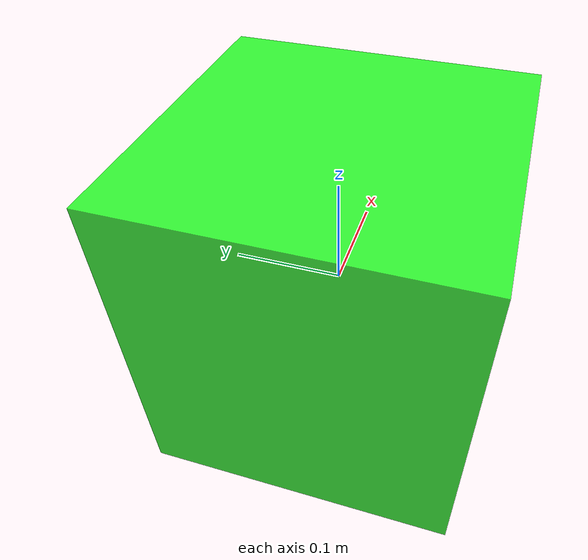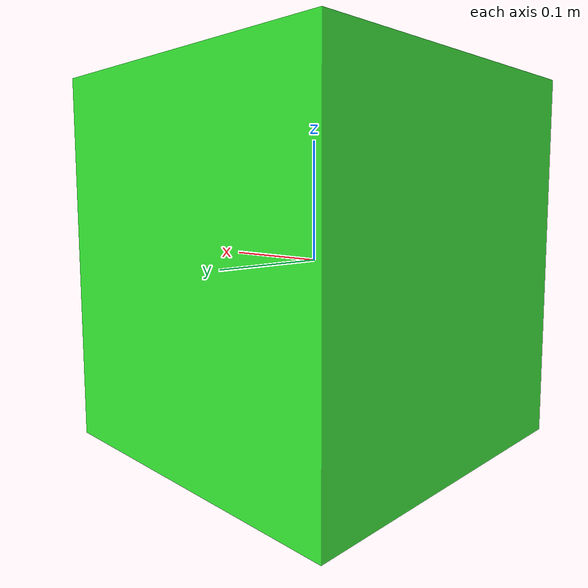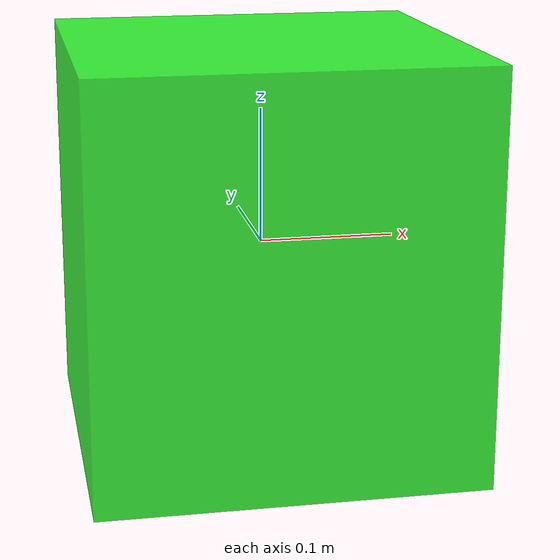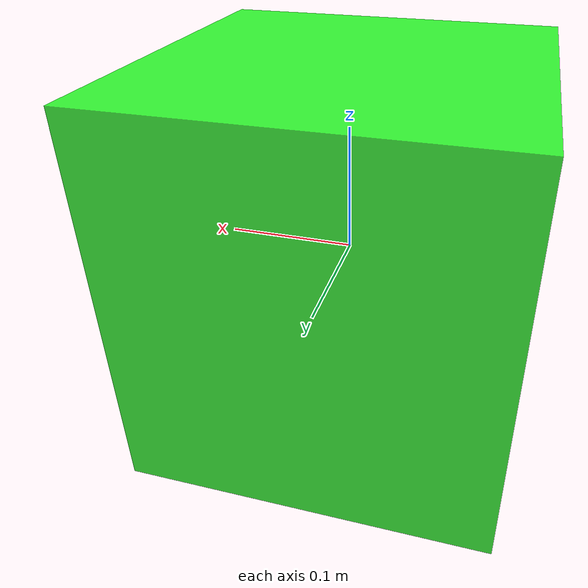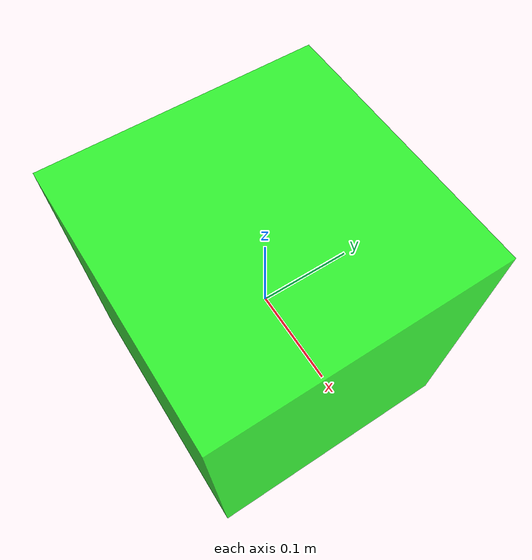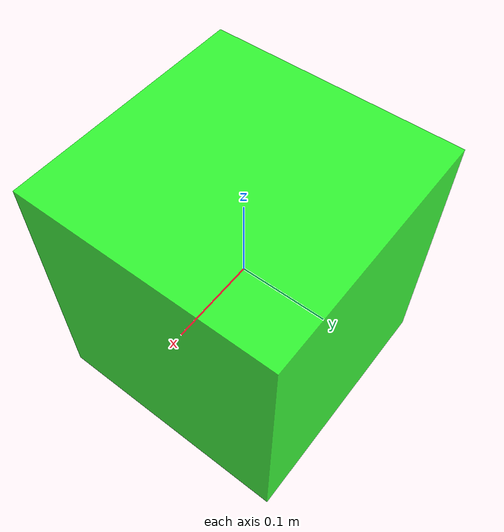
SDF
<?xml version="1.0" ?>
<sdf version="1.10">
  <model name="green_bin">
    <static>true</static>
    <link name="link">
      <collision name="collision">
        <geometry>
          <box>
            <size>0.28 0.28 0.30</size>
          </box>
        </geometry>
      </collision>

      <visual name="visual">
        <geometry>
          <box>
            <size>0.28 0.28 0.30</size>
          </box>
        </geometry>
        <material>
          <ambient>0.1 1 0.1 0.85</ambient>
          <diffuse>0.1 1 0.1 0.85</diffuse>
        </material>
      </visual>
    </link>
  </model>
</sdf>
